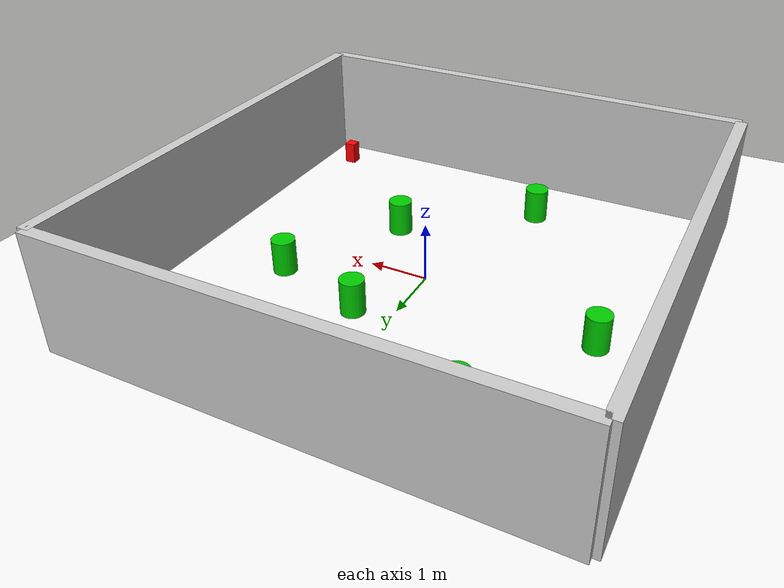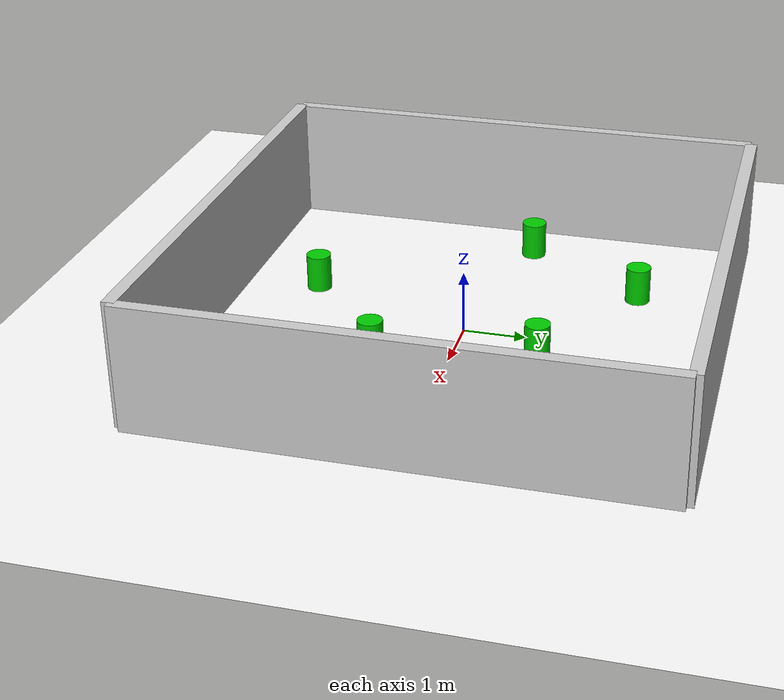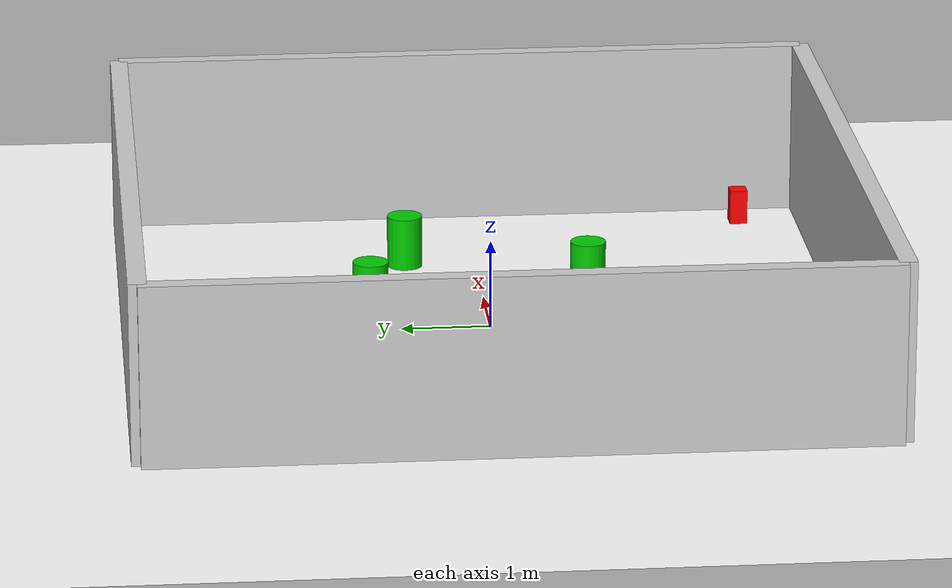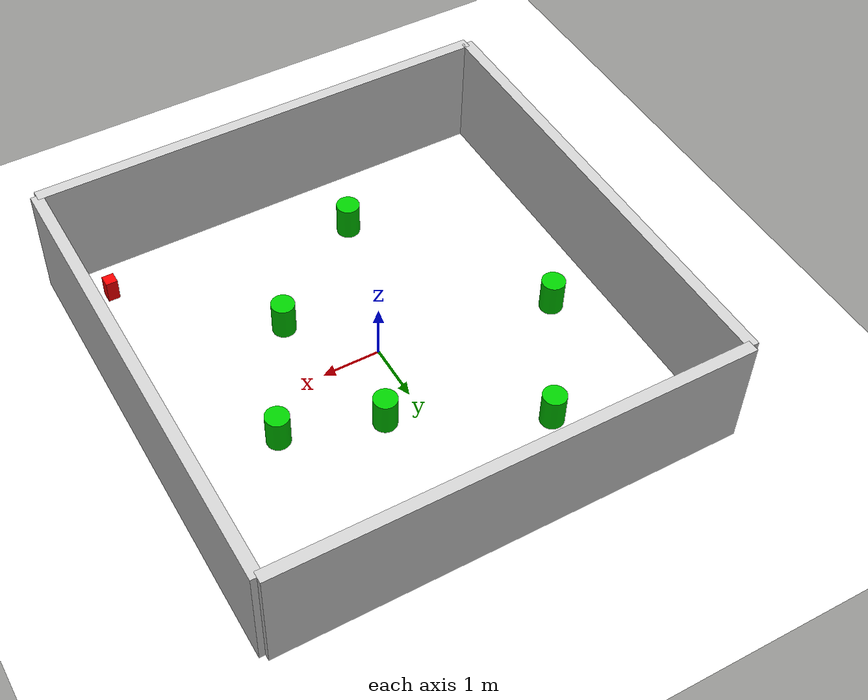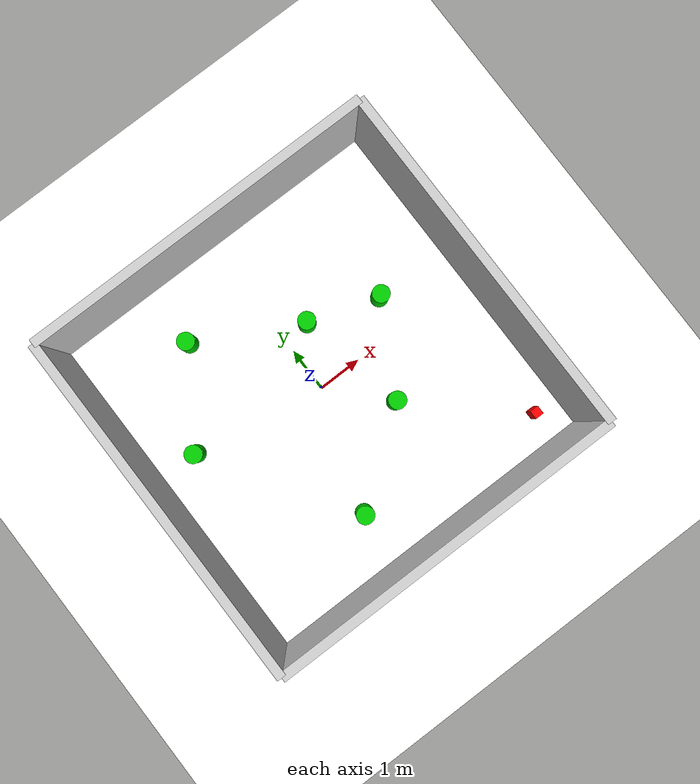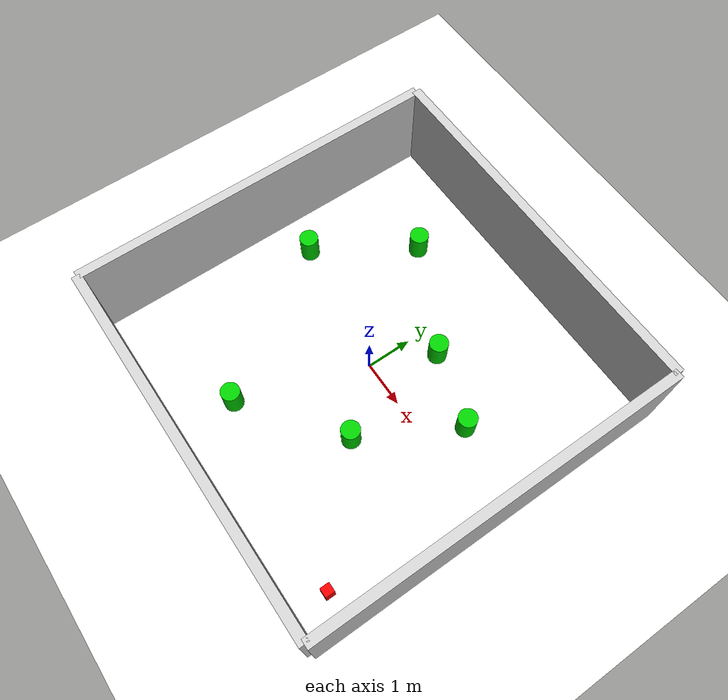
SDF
<sdf version="1.6">
 <world name="turtlebot3_single_camera_world">
  <model name="ground_plane">
   <static>true</static>
   <link name="link">
    <collision name="collision">
     <geometry><plane><normal>0 0 1</normal><size>20 20</size></plane></geometry>
    </collision>
    <visual name="visual">
     <cast_shadows>false</cast_shadows>
     <geometry><plane><normal>0 0 1</normal><size>20 20</size></plane></geometry>
     <material>
      <ambient>1.0 1.0 1.0 1</ambient>
      <diffuse>1.0 1.0 1.0 1</diffuse>
      <specular>0.1 0.1 0.1 1</specular>
     </material>
    </visual>
   </link>
  </model>
  <include><uri>model://sun</uri></include>
  <physics name="default_physics" default="0" type="ode">
   <gravity>0 0 -9.8066</gravity>
   <ode>
    <solver><type>quick</type><iters>150</iters><sor>1.3</sor></solver>
    <constraints>
     <cfm>0.00001</cfm>
     <erp>0.2</erp>
     <contact_max_correcting_vel>100.0</contact_max_correcting_vel>
     <contact_surface_layer>0.001</contact_surface_layer>
    </constraints>
   </ode>
   <max_step_size>0.004</max_step_size>
   <real_time_factor>1.0</real_time_factor>
   <real_time_update_rate>250</real_time_update_rate>
  </physics>
  <model name="wall_north">
   <pose>0 4 1 0 0 0</pose>
   <static>true</static>
   <link name="link">
    <visual name="visual">
     <geometry><box><size>8 0.2 2</size></box></geometry>
     <material><ambient>0.8 0.8 0.8 1</ambient><diffuse>0.8 0.8 0.8 1</diffuse></material>
    </visual>
    <collision name="collision"><geometry><box><size>8 0.2 2</size></box></geometry></collision>
   </link>
  </model>
  <model name="wall_south">
   <pose>0 -4 1 0 0 0</pose>
   <static>true</static>
   <link name="link">
    <visual name="visual">
     <geometry><box><size>8 0.2 2</size></box></geometry>
     <material><ambient>0.8 0.8 0.8 1</ambient><diffuse>0.8 0.8 0.8 1</diffuse></material>
    </visual>
    <collision name="collision"><geometry><box><size>8 0.2 2</size></box></geometry></collision>
   </link>
  </model>
  <model name="wall_east">
   <pose>4 0 1 0 0 0</pose>
   <static>true</static>
   <link name="link">
    <visual name="visual">
     <geometry><box><size>0.2 8 2</size></box></geometry>
     <material><ambient>0.8 0.8 0.8 1</ambient><diffuse>0.8 0.8 0.8 1</diffuse></material>
    </visual>
    <collision name="collision"><geometry><box><size>0.2 8 2</size></box></geometry></collision>
   </link>
  </model>
  <model name="wall_west">
   <pose>-4 0 1 0 0 0</pose>
   <static>true</static>
   <link name="link">
    <visual name="visual">
     <geometry><box><size>0.2 8 2</size></box></geometry>
     <material><ambient>0.8 0.8 0.8 1</ambient><diffuse>0.8 0.8 0.8 1</diffuse></material>
    </visual>
    <collision name="collision"><geometry><box><size>0.2 8 2</size></box></geometry></collision>
   </link>
  </model>
  <model name="obstacle_cylinder_1">
   <pose>-0.9 -2.7 0.3 0 0 0</pose>
   <static>true</static>
   <link name="link">
    <visual name="visual">
     <geometry><cylinder><radius>0.2</radius><length>0.6</length></cylinder></geometry>
     <material><ambient>0.0 0.8 0.0 1</ambient><diffuse>0.0 0.8 0.0 1</diffuse></material>
    </visual>
    <collision name="collision">
     <geometry><cylinder><radius>0.2</radius><length>0.6</length></cylinder></geometry>
    </collision>
   </link>
  </model>
  <model name="obstacle_cylinder_2">
   <pose>2.2 0.8 0.3 0 0 0</pose>
   <static>true</static>
   <link name="link">
    <visual name="visual">
     <geometry><cylinder><radius>0.2</radius><length>0.6</length></cylinder></geometry>
     <material><ambient>0.0 0.8 0.0 1</ambient><diffuse>0.0 0.8 0.0 1</diffuse></material>
    </visual>
    <collision name="collision">
     <geometry><cylinder><radius>0.2</radius><length>0.6</length></cylinder></geometry>
    </collision>
   </link>
  </model>
  <model name="obstacle_cylinder_3">
   <pose>-3.0 0.5 0.3 0 0 0</pose>
   <static>true</static>
   <link name="link">
    <visual name="visual">
     <geometry><cylinder><radius>0.2</radius><length>0.6</length></cylinder></geometry>
     <material><ambient>0.0 0.8 0.0 1</ambient><diffuse>0.0 0.8 0.0 1</diffuse></material>
    </visual>
    <collision name="collision">
     <geometry><cylinder><radius>0.28</radius><length>0.6</length></cylinder></geometry>
    </collision>
   </link>
  </model>
  <model name="obstacle_cylinder_4">
   <pose>1.1 -1.2 0.3 0 0 0</pose>
   <static>true</static>
   <link name="link">
    <visual name="visual">
     <geometry><cylinder><radius>0.2</radius><length>0.6</length></cylinder></geometry>
     <material><ambient>0.0 0.8 0.0 1</ambient><diffuse>0.0 0.8 0.0 1</diffuse></material>
    </visual>
    <collision name="collision">
     <geometry><cylinder><radius>0.2</radius><length>0.6</length></cylinder></geometry>
    </collision>
   </link>
  </model>
  <model name="obstacle_cylinder_5">
   <pose>-1.7 2.5 0.3 0 0 0</pose>
   <static>true</static>
   <link name="link">
    <visual name="visual">
     <geometry><cylinder><radius>0.2</radius><length>0.6</length></cylinder></geometry>
     <material><ambient>0.0 0.8 0.0 1</ambient><diffuse>0.0 0.8 0.0 1</diffuse></material>
    </visual>
    <collision name="collision">
     <geometry><cylinder><radius>0.2</radius><length>0.6</length></cylinder></geometry>
    </collision>
   </link>
  </model>
  <model name="obstacle_cylinder_6">
   <pose>0.6 1.3 0.3 0 0 0</pose>
   <static>true</static>
   <link name="link">
    <visual name="visual">
     <geometry><cylinder><radius>0.2</radius><length>0.6</length></cylinder></geometry>
     <material><ambient>0.0 0.8 0.0 1</ambient><diffuse>0.0 0.8 0.0 1</diffuse></material>
    </visual>
    <collision name="collision">
     <geometry><cylinder><radius>0.2</radius><length>0.6</length></cylinder></geometry>
    </collision>
   </link>
  </model>
  <model name="red_target">
   <pose>3.3 -3.2 0.25 0 0 0</pose>
   <static>true</static>
   <link name="link">
    <visual name="visual">
     <geometry><box><size>0.2 0.2 0.4</size></box></geometry>
     <material>
      <ambient>1.0 0.0 0.0 1</ambient>
      <diffuse>1.0 0.0 0.0 1</diffuse>
      <specular>0.8 0.0 0.0 1</specular>
      <emissive>0.3 0.0 0.0 1</emissive>
     </material>
    </visual>
    <collision name="collision"><geometry><box><size>0.2 0.2 0.4</size></box></geometry></collision>
   </link>
  </model>
  <model name="overhead_camera">
   <pose>0 0 5.0 -1.5708 1.5708 0</pose>
   <static>true</static>
   <link name="camera_link">
    <sensor name="overhead_camera_sensor" type="camera">
     <camera>
      <horizontal_fov>1.396</horizontal_fov>
      <image><width>960</width><height>960</height><format>R8G8B8</format></image>
      <clip><near>0.1</near><far>10</far></clip>
     </camera>
     <always_on>1</always_on>
     <update_rate>30</update_rate>
     <visualize>true</visualize>
     <plugin name="overhead_camera_controller" filename="libgazebo_ros_camera.so">
      <ros>
       <namespace>/overhead</namespace>
       <remapping>image_raw:=camera/image_raw</remapping>
       <remapping>camera_info:=camera/camera_info</remapping>
      </ros>
      <camera_name>overhead_camera</camera_name>
      <frame_name>overhead_camera_optical_frame</frame_name>
     </plugin>
    </sensor>
   </link>
  </model>
 </world>
</sdf>
